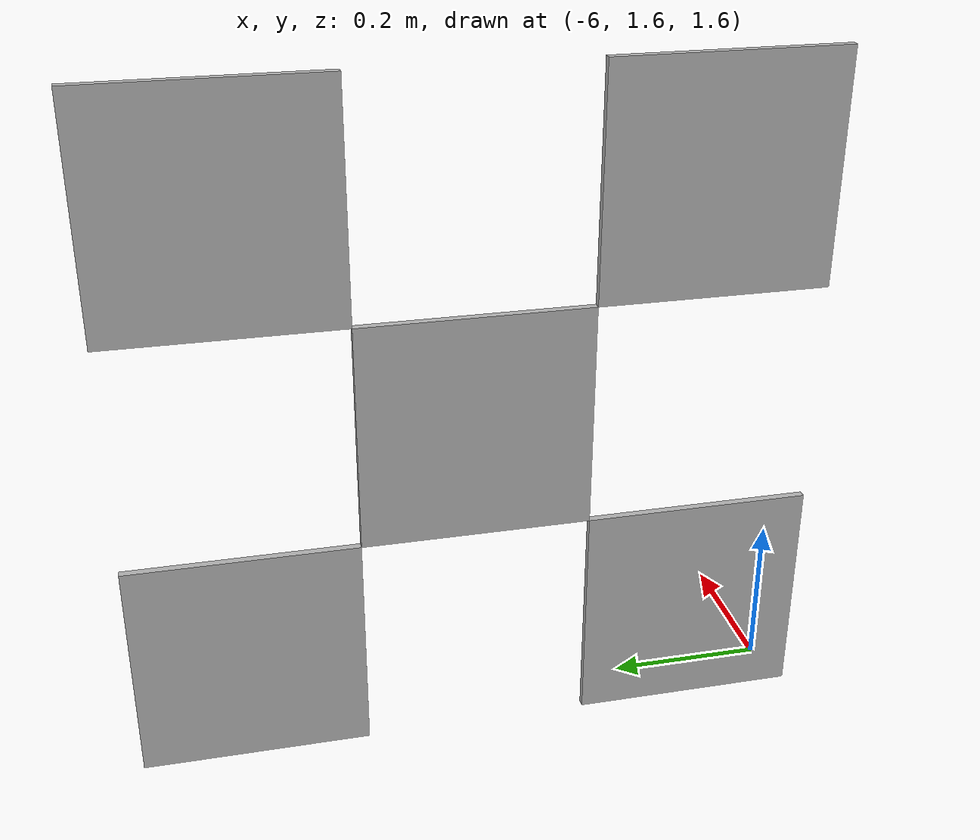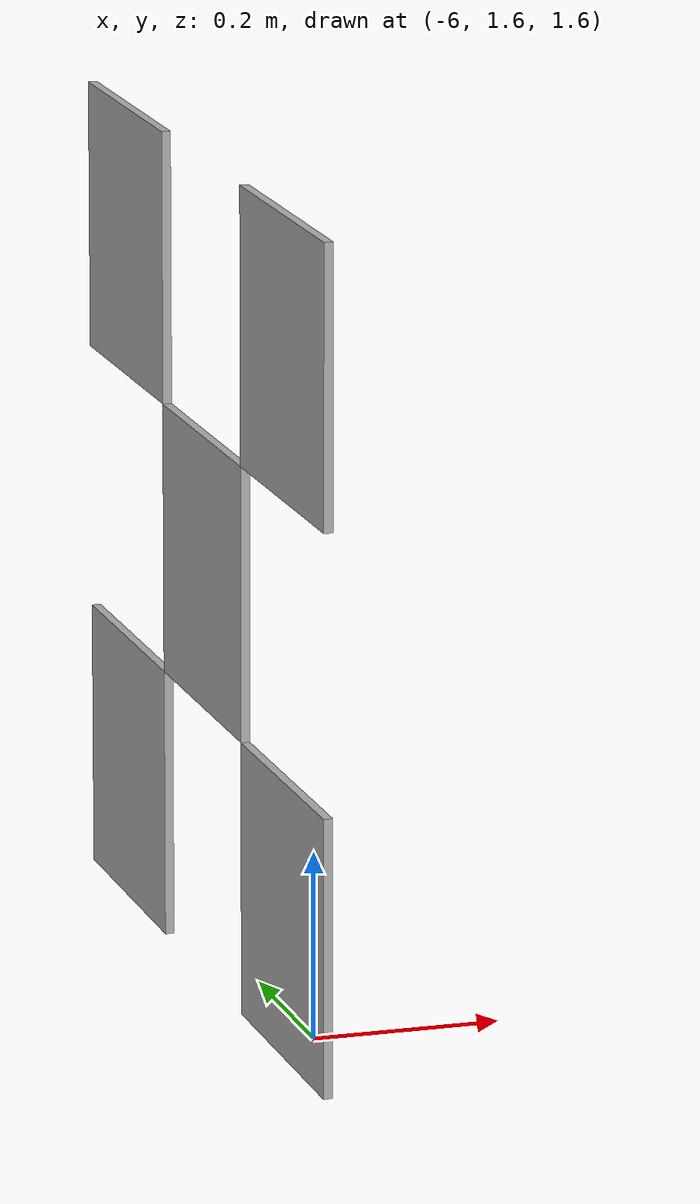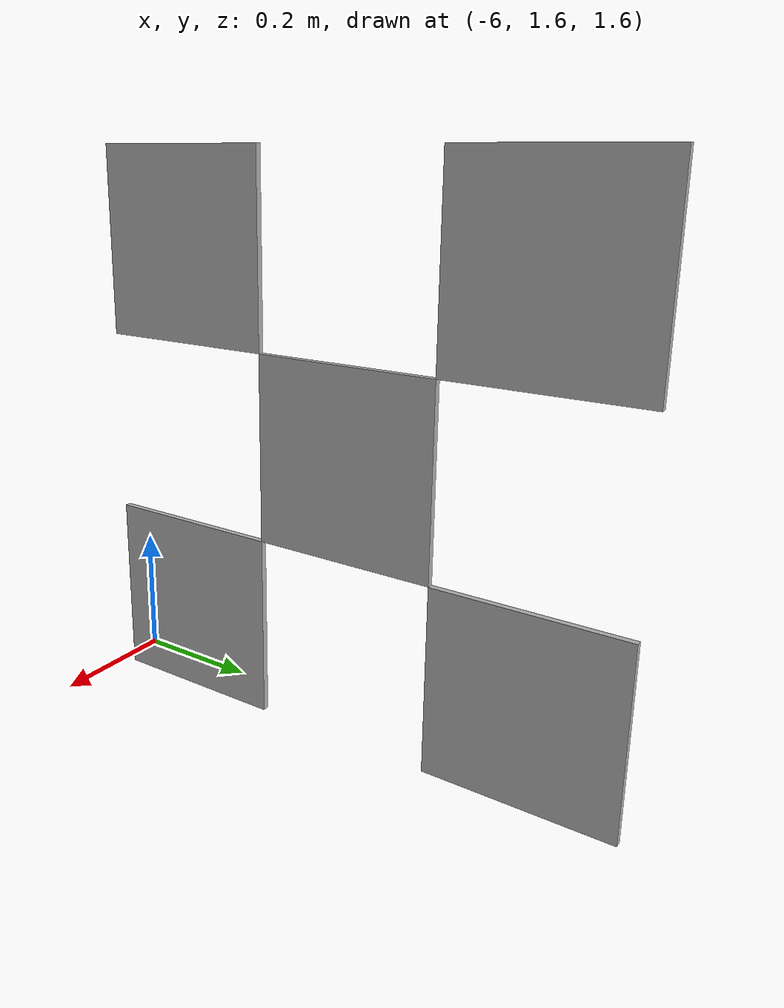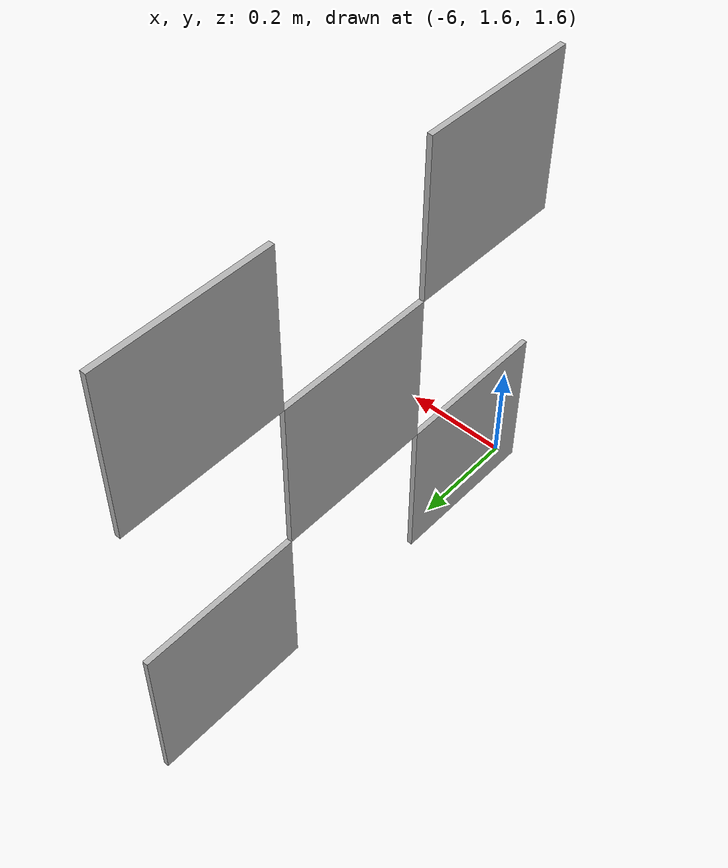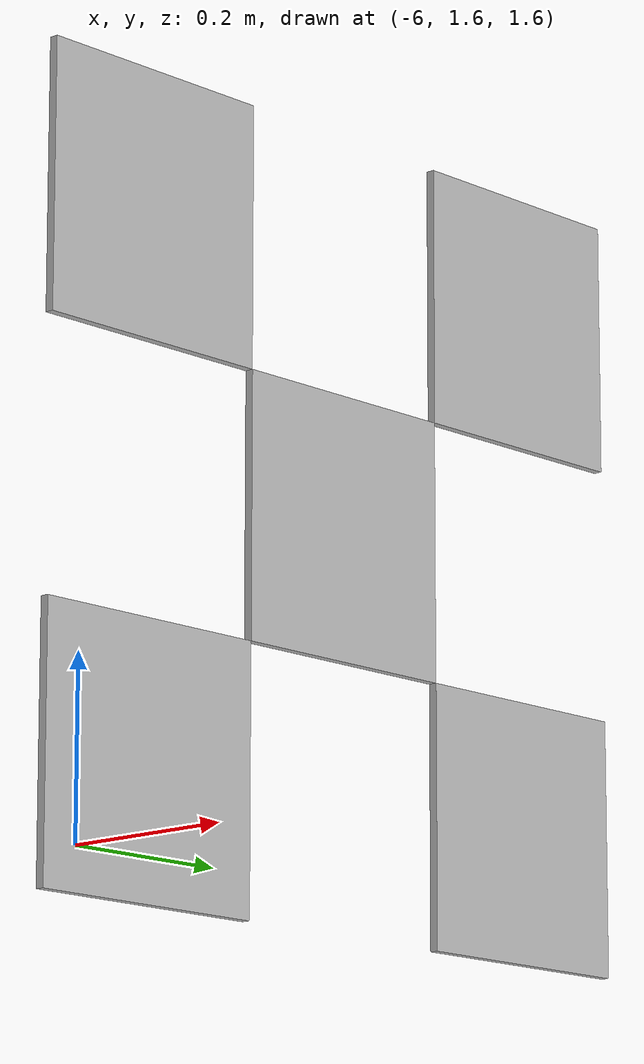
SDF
<?xml version="1.0" ?>
<sdf version="1.4">

	<model name='tag_bundle9'>

		<static>True</static>

		<link name="tag_40">

			<pose>-6 2 2 0 0 3.1426</pose>

			<inertial>
	        	<mass>0.1</mass>

	        	<inertia>
					<ixx>0.0166667</ixx>
					<ixy>0</ixy>
					<ixz>0</ixz>
					<iyy>0.0166667</iyy>
					<iyz>0</iyz>
					<izz>0.0166667</izz>
        		</inertia>

        		<pose frame=''>0 0 0 0 -0 0</pose>
      		</inertial>

			<pose frame=''>0 0 0 0 -0 0</pose>
			<gravity>1</gravity>
			<self_collide>0</self_collide>
			<kinematic>0</kinematic>
			<enable_wind>0</enable_wind>

			<visual name='visual_40'>
				<pose frame=''>0 0 0 0 -0 0</pose>

		        <geometry>
		        	<box>
		        	<size>0.01 0.3 0.3</size>
		        	</box>
		        </geometry>

		        <material>
		        	<lighting>0</lighting>

		        	<script>
		        		<uri>models://media/materials/scripts/Apriltag.material</uri>
		        		<name>Apriltag/id40</name>
		          	</script>

		        	<shader type='vertex'>
		        		<normal_map>__default__</normal_map>
		          	</shader>

		        	<ambient>0.3 0.3 0.3 1</ambient>
		        	<diffuse>0.7 0.7 0.7 1</diffuse>
		        	<specular>0.01 0.01 0.01 1</specular>
		        	<emissive>0 0 0 1</emissive>
		        </material>

		        <transparency>0</transparency>
		        <cast_shadows>1</cast_shadows>
			</visual>

			<collision name='collision_40'>
				<laser_retro>0</laser_retro>
        		<max_contacts>10</max_contacts>
        		<pose frame=''>0 0 0 0 -0 0</pose>

		        <geometry>
		        	<box>
		        		<size>0.01 0.3 0.3</size>
		        	</box>
		        </geometry>

		        <surface>
		        	<friction>
		            	<ode>
		            		<mu>1</mu>
		            		<mu2>1</mu2>
		            		<fdir1>0 0 0</fdir1>
		            		<slip1>0</slip1>
		            		<slip2>0</slip2>
		            	</ode>

		           		<torsional>
		            		<coefficient>1</coefficient>
	            			<patch_radius>0</patch_radius>
	            			<surface_radius>0</surface_radius>
	            			<use_patch_radius>1</use_patch_radius>

	            			<ode>
		                		<slip>0</slip>
		              		</ode>
		            	</torsional>
		          	</friction>

		        	<bounce>
		            	<restitution_coefficient>0</restitution_coefficient>
		            	<threshold>1e+06</threshold>
		        	</bounce>

		        	<contact>
		            	<collide_without_contact>0</collide_without_contact>
		            	<collide_without_contact_bitmask>1</collide_without_contact_bitmask>
		            	<collide_bitmask>1</collide_bitmask>

		            	<ode>
		            		<soft_cfm>0</soft_cfm>
		            		<soft_erp>0.2</soft_erp>
		            		<kp>1e+13</kp>
		            		<kd>1</kd>
		            		<max_vel>0.01</max_vel>
		            		<min_depth>0</min_depth>
		            	</ode>

			            <bullet>
			            	<split_impulse>1</split_impulse>
			            	<split_impulse_penetration_threshold>-0.01</split_impulse_penetration_threshold>
			            	<soft_cfm>0</soft_cfm>
			            	<soft_erp>0.2</soft_erp>
			            	<kp>1e+13</kp>
			            	<kd>1</kd>
			            </bullet>
		        	</contact>
		        </surface>
		    </collision>
		</link>
 -->
		<link name="tag_41">

			<pose>-6 2.3 2.3 0 0 3.1426</pose>

			<inertial>
	        	<mass>0.1</mass>

	        	<inertia>
					<ixx>0.0166667</ixx>
					<ixy>0</ixy>
					<ixz>0</ixz>
					<iyy>0.0166667</iyy>
					<iyz>0</iyz>
					<izz>0.0166667</izz>
        		</inertia>

        		<pose frame=''>0 0 0 0 -0 0</pose>
      		</inertial>

			<pose frame=''>0 0 0 0 -0 0</pose>
			<gravity>1</gravity>
			<self_collide>0</self_collide>
			<kinematic>0</kinematic>
			<enable_wind>0</enable_wind>

			<visual name='visual_41'>
				<pose frame=''>0 0 0 0 -0 0</pose>

		        <geometry>
		        	<box>
		        	<size>0.01 0.3 0.3</size>
		        	</box>
		        </geometry>

		        <material>
		        	<lighting>0</lighting>

		        	<script>
		        		<uri>models://media/materials/scripts/Apriltag.material</uri>
		        		<name>Apriltag/id41</name>
		          	</script>

		        	<shader type='vertex'>
		        		<normal_map>__default__</normal_map>
		          	</shader>

		        	<ambient>0.3 0.3 0.3 1</ambient>
		        	<diffuse>0.7 0.7 0.7 1</diffuse>
		        	<specular>0.01 0.01 0.01 1</specular>
		        	<emissive>0 0 0 1</emissive>
		        </material>

		        <transparency>0</transparency>
		        <cast_shadows>1</cast_shadows>
			</visual>

			<collision name='collision_41'>
				<laser_retro>0</laser_retro>
        		<max_contacts>10</max_contacts>
        		<pose frame=''>0 0 0 0 -0 0</pose>

		        <geometry>
		        	<box>
		        		<size>0.01 0.3 0.3</size>
		        	</box>
		        </geometry>

		        <surface>
		        	<friction>
		            	<ode>
		            		<mu>1</mu>
		            		<mu2>1</mu2>
		            		<fdir1>0 0 0</fdir1>
		            		<slip1>0</slip1>
		            		<slip2>0</slip2>
		            	</ode>

		           		<torsional>
		            		<coefficient>1</coefficient>
	            			<patch_radius>0</patch_radius>
	            			<surface_radius>0</surface_radius>
	            			<use_patch_radius>1</use_patch_radius>

	            			<ode>
		                		<slip>0</slip>
		              		</ode>
		            	</torsional>
		          	</friction>

		        	<bounce>
		            	<restitution_coefficient>0</restitution_coefficient>
		            	<threshold>1e+06</threshold>
		        	</bounce>

		        	<contact>
		            	<collide_without_contact>0</collide_without_contact>
		            	<collide_without_contact_bitmask>1</collide_without_contact_bitmask>
		            	<collide_bitmask>1</collide_bitmask>

		            	<ode>
		            		<soft_cfm>0</soft_cfm>
		            		<soft_erp>0.2</soft_erp>
		            		<kp>1e+13</kp>
		            		<kd>1</kd>
		            		<max_vel>0.01</max_vel>
		            		<min_depth>0</min_depth>
		            	</ode>

			            <bullet>
			            	<split_impulse>1</split_impulse>
			            	<split_impulse_penetration_threshold>-0.01</split_impulse_penetration_threshold>
			            	<soft_cfm>0</soft_cfm>
			            	<soft_erp>0.2</soft_erp>
			            	<kp>1e+13</kp>
			            	<kd>1</kd>
			            </bullet>
		        	</contact>
		        </surface>
		    </collision>
		</link>

		<link name="tag_42">

			<pose>-6 1.7 2.3 0 0 3.1426</pose>

			<inertial>
	        	<mass>0.1</mass>

	        	<inertia>
					<ixx>0.0166667</ixx>
					<ixy>0</ixy>
					<ixz>0</ixz>
					<iyy>0.0166667</iyy>
					<iyz>0</iyz>
					<izz>0.0166667</izz>
        		</inertia>

        		<pose frame=''>0 0 0 0 -0 0</pose>
      		</inertial>

			<pose frame=''>0 0 0 0 -0 0</pose>
			<gravity>1</gravity>
			<self_collide>0</self_collide>
			<kinematic>0</kinematic>
			<enable_wind>0</enable_wind>

			<visual name='visual_42'>
				<pose frame=''>0 0 0 0 -0 0</pose>

		        <geometry>
		        	<box>
		        	<size>0.01 0.3 0.3</size>
		        	</box>
		        </geometry>

		        <material>
		        	<lighting>0</lighting>

		        	<script>
		        		<uri>models://media/materials/scripts/Apriltag.material</uri>
		        		<name>Apriltag/id42</name>
		          	</script>

		        	<shader type='vertex'>
		        		<normal_map>__default__</normal_map>
		          	</shader>

		        	<ambient>0.3 0.3 0.3 1</ambient>
		        	<diffuse>0.7 0.7 0.7 1</diffuse>
		        	<specular>0.01 0.01 0.01 1</specular>
		        	<emissive>0 0 0 1</emissive>
		        </material>

		        <transparency>0</transparency>
		        <cast_shadows>1</cast_shadows>
			</visual>

			<collision name='collision_42'>
				<laser_retro>0</laser_retro>
        		<max_contacts>10</max_contacts>
        		<pose frame=''>0 0 0 0 -0 0</pose>

		        <geometry>
		        	<box>
		        		<size>0.01 0.3 0.3</size>
		        	</box>
		        </geometry>

		        <surface>
		        	<friction>
		            	<ode>
		            		<mu>1</mu>
		            		<mu2>1</mu2>
		            		<fdir1>0 0 0</fdir1>
		            		<slip1>0</slip1>
		            		<slip2>0</slip2>
		            	</ode>

		           		<torsional>
		            		<coefficient>1</coefficient>
	            			<patch_radius>0</patch_radius>
	            			<surface_radius>0</surface_radius>
	            			<use_patch_radius>1</use_patch_radius>

	            			<ode>
		                		<slip>0</slip>
		              		</ode>
		            	</torsional>
		          	</friction>

		        	<bounce>
		            	<restitution_coefficient>0</restitution_coefficient>
		            	<threshold>1e+06</threshold>
		        	</bounce>

		        	<contact>
		            	<collide_without_contact>0</collide_without_contact>
		            	<collide_without_contact_bitmask>1</collide_without_contact_bitmask>
		            	<collide_bitmask>1</collide_bitmask>

		            	<ode>
		            		<soft_cfm>0</soft_cfm>
		            		<soft_erp>0.2</soft_erp>
		            		<kp>1e+13</kp>
		            		<kd>1</kd>
		            		<max_vel>0.01</max_vel>
		            		<min_depth>0</min_depth>
		            	</ode>

			            <bullet>
			            	<split_impulse>1</split_impulse>
			            	<split_impulse_penetration_threshold>-0.01</split_impulse_penetration_threshold>
			            	<soft_cfm>0</soft_cfm>
			            	<soft_erp>0.2</soft_erp>
			            	<kp>1e+13</kp>
			            	<kd>1</kd>
			            </bullet>
		        	</contact>
		        </surface>
		    </collision>
		</link>

		<link name="tag_43">

			<pose>-6 1.7 1.7 0 0 3.1426</pose>

			<inertial>
	        	<mass>0.1</mass>

	        	<inertia>
					<ixx>0.0166667</ixx>
					<ixy>0</ixy>
					<ixz>0</ixz>
					<iyy>0.0166667</iyy>
					<iyz>0</iyz>
					<izz>0.0166667</izz>
        		</inertia>

        		<pose frame=''>0 0 0 0 -0 0</pose>
      		</inertial>

			<pose frame=''>0 0 0 0 -0 0</pose>
			<gravity>1</gravity>
			<self_collide>0</self_collide>
			<kinematic>0</kinematic>
			<enable_wind>0</enable_wind>

			<visual name='visual_43'>
				<pose frame=''>0 0 0 0 -0 0</pose>

		        <geometry>
		        	<box>
		        	<size>0.01 0.3 0.3</size>
		        	</box>
		        </geometry>

		        <material>
		        	<lighting>0</lighting>

		        	<script>
		        		<uri>models://media/materials/scripts/Apriltag.material</uri>
		        		<name>Apriltag/id43</name>
		          	</script>

		        	<shader type='vertex'>
		        		<normal_map>__default__</normal_map>
		          	</shader>

		        	<ambient>0.3 0.3 0.3 1</ambient>
		        	<diffuse>0.7 0.7 0.7 1</diffuse>
		        	<specular>0.01 0.01 0.01 1</specular>
		        	<emissive>0 0 0 1</emissive>
		        </material>

		        <transparency>0</transparency>
		        <cast_shadows>1</cast_shadows>
			</visual>

			<collision name='collision_43'>
				<laser_retro>0</laser_retro>
        		<max_contacts>10</max_contacts>
        		<pose frame=''>0 0 0 0 -0 0</pose>

		        <geometry>
		        	<box>
		        		<size>0.01 0.3 0.3</size>
		        	</box>
		        </geometry>

		        <surface>
		        	<friction>
		            	<ode>
		            		<mu>1</mu>
		            		<mu2>1</mu2>
		            		<fdir1>0 0 0</fdir1>
		            		<slip1>0</slip1>
		            		<slip2>0</slip2>
		            	</ode>

		           		<torsional>
		            		<coefficient>1</coefficient>
	            			<patch_radius>0</patch_radius>
	            			<surface_radius>0</surface_radius>
	            			<use_patch_radius>1</use_patch_radius>

	            			<ode>
		                		<slip>0</slip>
		              		</ode>
		            	</torsional>
		          	</friction>

		        	<bounce>
		            	<restitution_coefficient>0</restitution_coefficient>
		            	<threshold>1e+06</threshold>
		        	</bounce>

		        	<contact>
		            	<collide_without_contact>0</collide_without_contact>
		            	<collide_without_contact_bitmask>1</collide_without_contact_bitmask>
		            	<collide_bitmask>1</collide_bitmask>

		            	<ode>
		            		<soft_cfm>0</soft_cfm>
		            		<soft_erp>0.2</soft_erp>
		            		<kp>1e+13</kp>
		            		<kd>1</kd>
		            		<max_vel>0.01</max_vel>
		            		<min_depth>0</min_depth>
		            	</ode>

			            <bullet>
			            	<split_impulse>1</split_impulse>
			            	<split_impulse_penetration_threshold>-0.01</split_impulse_penetration_threshold>
			            	<soft_cfm>0</soft_cfm>
			            	<soft_erp>0.2</soft_erp>
			            	<kp>1e+13</kp>
			            	<kd>1</kd>
			            </bullet>
		        	</contact>
		        </surface>
		    </collision>
		</link>

		<link name="tag_44">

			<pose>-6 2.3 1.7 0 0 3.1426</pose>

			<inertial>
	        	<mass>0.1</mass>

	        	<inertia>
					<ixx>0.0166667</ixx>
					<ixy>0</ixy>
					<ixz>0</ixz>
					<iyy>0.0166667</iyy>
					<iyz>0</iyz>
					<izz>0.0166667</izz>
        		</inertia>

        		<pose frame=''>0 0 0 0 -0 0</pose>
      		</inertial>

			<pose frame=''>0 0 0 0 -0 0</pose>
			<gravity>1</gravity>
			<self_collide>0</self_collide>
			<kinematic>0</kinematic>
			<enable_wind>0</enable_wind>

			<visual name='visual_44'>
				<pose frame=''>0 0 0 0 -0 0</pose>

		        <geometry>
		        	<box>
		        	<size>0.01 0.3 0.3</size>
		        	</box>
		        </geometry>

		        <material>
		        	<lighting>0</lighting>

		        	<script>
		        		<uri>models://media/materials/scripts/Apriltag.material</uri>
		        		<name>Apriltag/id44</name>
		          	</script>

		        	<shader type='vertex'>
		        		<normal_map>__default__</normal_map>
		          	</shader>

		        	<ambient>0.3 0.3 0.3 1</ambient>
		        	<diffuse>0.7 0.7 0.7 1</diffuse>
		        	<specular>0.01 0.01 0.01 1</specular>
		        	<emissive>0 0 0 1</emissive>
		        </material>

		        <transparency>0</transparency>
		        <cast_shadows>1</cast_shadows>
			</visual>

			<collision name='collision_44'>
				<laser_retro>0</laser_retro>
        		<max_contacts>10</max_contacts>
        		<pose frame=''>0 0 0 0 -0 0</pose>

		        <geometry>
		        	<box>
		        		<size>0.01 0.3 0.3</size>
		        	</box>
		        </geometry>

		        <surface>
		        	<friction>
		            	<ode>
		            		<mu>1</mu>
		            		<mu2>1</mu2>
		            		<fdir1>0 0 0</fdir1>
		            		<slip1>0</slip1>
		            		<slip2>0</slip2>
		            	</ode>

		           		<torsional>
		            		<coefficient>1</coefficient>
	            			<patch_radius>0</patch_radius>
	            			<surface_radius>0</surface_radius>
	            			<use_patch_radius>1</use_patch_radius>

	            			<ode>
		                		<slip>0</slip>
		              		</ode>
		            	</torsional>
		          	</friction>

		        	<bounce>
		            	<restitution_coefficient>0</restitution_coefficient>
		            	<threshold>1e+06</threshold>
		        	</bounce>

		        	<contact>
		            	<collide_without_contact>0</collide_without_contact>
		            	<collide_without_contact_bitmask>1</collide_without_contact_bitmask>
		            	<collide_bitmask>1</collide_bitmask>

		            	<ode>
		            		<soft_cfm>0</soft_cfm>
		            		<soft_erp>0.2</soft_erp>
		            		<kp>1e+13</kp>
		            		<kd>1</kd>
		            		<max_vel>0.01</max_vel>
		            		<min_depth>0</min_depth>
		            	</ode>

			            <bullet>
			            	<split_impulse>1</split_impulse>
			            	<split_impulse_penetration_threshold>-0.01</split_impulse_penetration_threshold>
			            	<soft_cfm>0</soft_cfm>
			            	<soft_erp>0.2</soft_erp>
			            	<kp>1e+13</kp>
			            	<kd>1</kd>
			            </bullet>
		        	</contact>
		        </surface>
		    </collision>
		</link>

		<joint name = "joint_1" type="fixed">
			<axis xyz="0 0 0" />
			<parent link="tag_25" />
			<child link="tag_26" />
	    </joint>

	    <joint name = "joint_2" type="fixed">
			<axis xyz="0 0 0" />
			<parent link="tag_25" />
			<child link="tag_27" />
	    </joint>

	    <joint name = "joint_3" type="fixed">
			<axis xyz="0 0 0" />
			<parent link="tag_25" />
			<child link="tag_28" />
	    </joint>

	    <joint name = "joint_4" type="fixed">
			<axis xyz="0 0 0" />
			<parent link="tag_25" />
			<child link="tag_29" />
	    </joint>

	</model>
</sdf>
